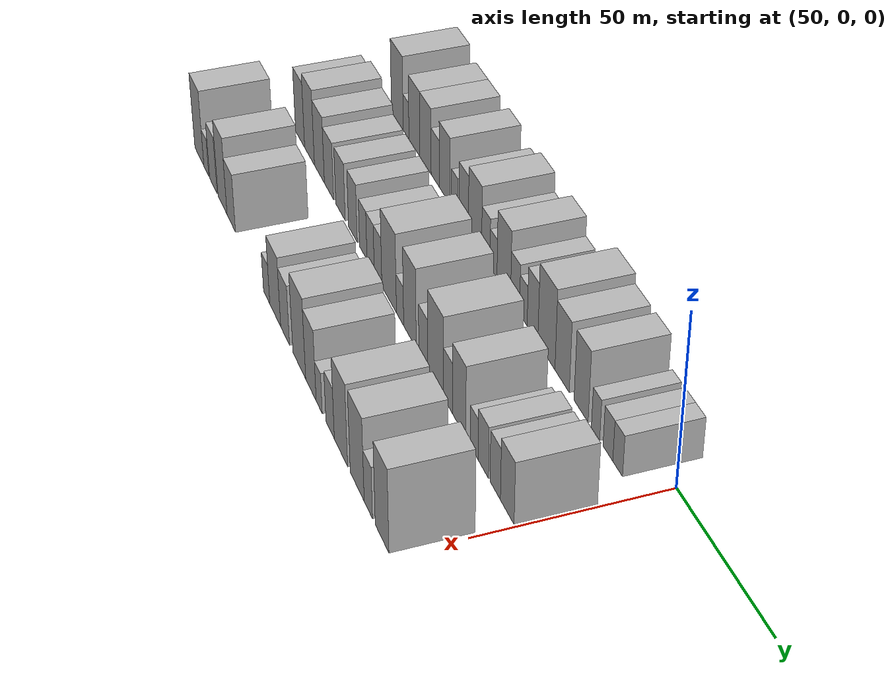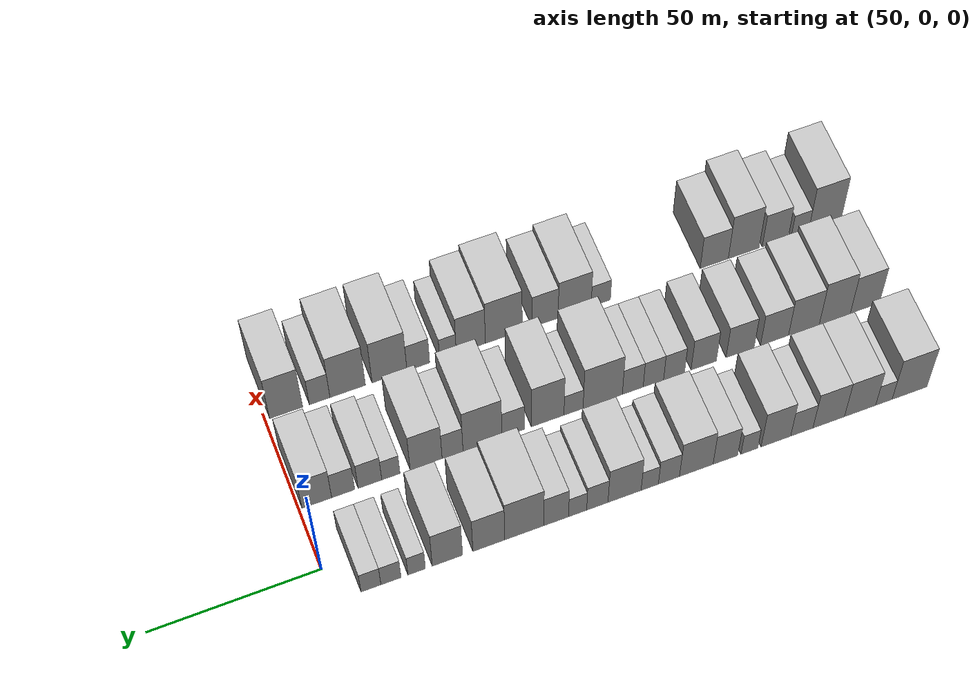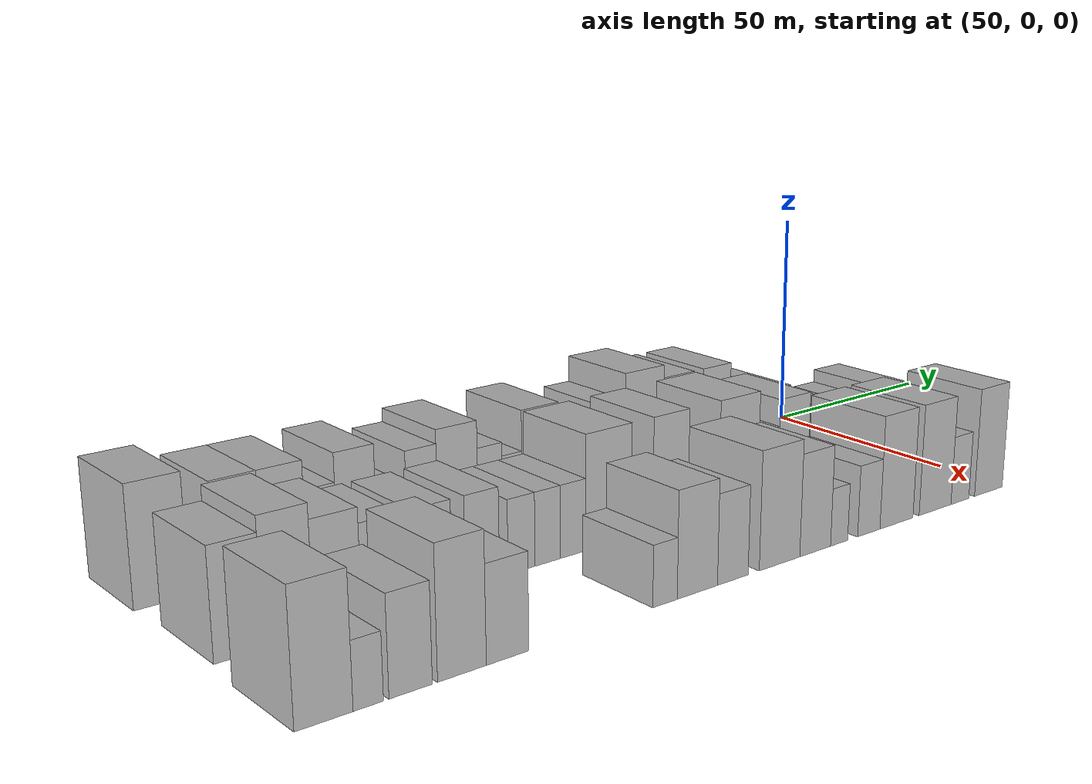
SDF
<sdf version="1.6">
 <world name="default">
  <model name="building_21">
   <static>1</static>
   <pose>50.0000 -171.3831 0 0.000000 0.000000 0.000000</pose>
   <link name="link">
    <pose>0 0 12.00 0 0 0</pose>
    <collision name="collision"><geometry><box><size>20.0000 10.7487 24.0000</size></box></geometry></collision>
    <visual name="visual">
     <cast_shadows>0</cast_shadows>
     <geometry><box><size>20.0000 10.7487 24.0000</size></box></geometry>
     <material>
      <script>
       <uri>model://HANNAS_wall/materials/scripts</uri>
       <uri>model://HANNAS_wall/materials/textures</uri>
       <name>vrc/HANNAS_wall</name>
      </script>
     </material>
    </visual>
   </link>
  </model>
  <model name="building_22">
   <static>1</static>
   <pose>50.0000 -163.4600 0 0.000000 0.000000 0.000000</pose>
   <link name="link">
    <pose>0 0 6.00 0 0 0</pose>
    <collision name="collision"><geometry><box><size>20.0000 5.0975 12.0000</size></box></geometry></collision>
    <visual name="visual">
     <cast_shadows>0</cast_shadows>
     <geometry><box><size>20.0000 5.0975 12.0000</size></box></geometry>
     <material>
      <script>
       <uri>model://HANNAS_wall/materials/scripts</uri>
       <uri>model://HANNAS_wall/materials/textures</uri>
       <name>vrc/HANNAS_wall</name>
      </script>
     </material>
    </visual>
   </link>
  </model>
  <model name="building_23">
   <static>1</static>
   <pose>50.0000 -156.1194 0 0.000000 0.000000 0.000000</pose>
   <link name="link">
    <pose>0 0 10.50 0 0 0</pose>
    <collision name="collision"><geometry><box><size>20.0000 9.5837 21.0000</size></box></geometry></collision>
    <visual name="visual">
     <cast_shadows>0</cast_shadows>
     <geometry><box><size>20.0000 9.5837 21.0000</size></box></geometry>
     <material>
      <script>
       <uri>model://HANNAS_wall/materials/scripts</uri>
       <uri>model://HANNAS_wall/materials/textures</uri>
       <name>vrc/HANNAS_wall</name>
      </script>
     </material>
    </visual>
   </link>
  </model>
  <model name="building_24">
   <static>1</static>
   <pose>50.0000 -146.5039 0 0.000000 0.000000 0.000000</pose>
   <link name="link">
    <pose>0 0 10.50 0 0 0</pose>
    <collision name="collision"><geometry><box><size>20.0000 9.6473 21.0000</size></box></geometry></collision>
    <visual name="visual">
     <cast_shadows>0</cast_shadows>
     <geometry><box><size>20.0000 9.6473 21.0000</size></box></geometry>
     <material>
      <script>
       <uri>model://HANNAS_wall/materials/scripts</uri>
       <uri>model://HANNAS_wall/materials/textures</uri>
       <name>vrc/HANNAS_wall</name>
      </script>
     </material>
    </visual>
   </link>
  </model>
  <model name="building_25">
   <static>1</static>
   <pose>50.0000 -138.2730 0 0.000000 0.000000 0.000000</pose>
   <link name="link">
    <pose>0 0 7.50 0 0 0</pose>
    <collision name="collision"><geometry><box><size>20.0000 6.8145 15.0000</size></box></geometry></collision>
    <visual name="visual">
     <cast_shadows>0</cast_shadows>
     <geometry><box><size>20.0000 6.8145 15.0000</size></box></geometry>
     <material>
      <script>
       <uri>model://HANNAS_wall/materials/scripts</uri>
       <uri>model://HANNAS_wall/materials/textures</uri>
       <name>vrc/HANNAS_wall</name>
      </script>
     </material>
    </visual>
   </link>
  </model>
  <model name="building_26">
   <static>1</static>
   <pose>50.0000 -130.3590 0 0.000000 0.000000 0.000000</pose>
   <link name="link">
    <pose>0 0 10.50 0 0 0</pose>
    <collision name="collision"><geometry><box><size>20.0000 9.0134 21.0000</size></box></geometry></collision>
    <visual name="visual">
     <cast_shadows>0</cast_shadows>
     <geometry><box><size>20.0000 9.0134 21.0000</size></box></geometry>
     <material>
      <script>
       <uri>model://HANNAS_wall/materials/scripts</uri>
       <uri>model://HANNAS_wall/materials/textures</uri>
       <name>vrc/HANNAS_wall</name>
      </script>
     </material>
    </visual>
   </link>
  </model>
  <model name="building_27">
   <static>1</static>
   <pose>50.0000 -122.3094 0 0.000000 0.000000 0.000000</pose>
   <link name="link">
    <pose>0 0 6.00 0 0 0</pose>
    <collision name="collision"><geometry><box><size>20.0000 5.0859 12.0000</size></box></geometry></collision>
    <visual name="visual">
     <cast_shadows>0</cast_shadows>
     <geometry><box><size>20.0000 5.0859 12.0000</size></box></geometry>
     <material>
      <script>
       <uri>model://HANNAS_wall/materials/scripts</uri>
       <uri>model://HANNAS_wall/materials/textures</uri>
       <name>vrc/HANNAS_wall</name>
      </script>
     </material>
    </visual>
   </link>
  </model>
  <model name="building_28">
   <static>1</static>
   <pose>50.0000 -115.0501 0 0.000000 0.000000 0.000000</pose>
   <link name="link">
    <pose>0 0 9.00 0 0 0</pose>
    <collision name="collision"><geometry><box><size>20.0000 7.4328 18.0000</size></box></geometry></collision>
    <visual name="visual">
     <cast_shadows>0</cast_shadows>
     <geometry><box><size>20.0000 7.4328 18.0000</size></box></geometry>
     <material>
      <script>
       <uri>model://HANNAS_wall/materials/scripts</uri>
       <uri>model://HANNAS_wall/materials/textures</uri>
       <name>vrc/HANNAS_wall</name>
      </script>
     </material>
    </visual>
   </link>
  </model>
  <model name="building_29">
   <static>1</static>
   <pose>50.0000 -106.2806 0 0.000000 0.000000 0.000000</pose>
   <link name="link">
    <pose>0 0 10.50 0 0 0</pose>
    <collision name="collision"><geometry><box><size>20.0000 10.1062 21.0000</size></box></geometry></collision>
    <visual name="visual">
     <cast_shadows>0</cast_shadows>
     <geometry><box><size>20.0000 10.1062 21.0000</size></box></geometry>
     <material>
      <script>
       <uri>model://HANNAS_wall/materials/scripts</uri>
       <uri>model://HANNAS_wall/materials/textures</uri>
       <name>vrc/HANNAS_wall</name>
      </script>
     </material>
    </visual>
   </link>
  </model>
  <model name="building_30">
   <static>1</static>
   <pose>50.0000 -98.0717 0 0.000000 0.000000 0.000000</pose>
   <link name="link">
    <pose>0 0 7.50 0 0 0</pose>
    <collision name="collision"><geometry><box><size>20.0000 6.3116 15.0000</size></box></geometry></collision>
    <visual name="visual">
     <cast_shadows>0</cast_shadows>
     <geometry><box><size>20.0000 6.3116 15.0000</size></box></geometry>
     <material>
      <script>
       <uri>model://HANNAS_wall/materials/scripts</uri>
       <uri>model://HANNAS_wall/materials/textures</uri>
       <name>vrc/HANNAS_wall</name>
      </script>
     </material>
    </visual>
   </link>
  </model>
  <model name="building_31">
   <static>1</static>
   <pose>50.0000 -92.3373 0 0.000000 0.000000 0.000000</pose>
   <link name="link">
    <pose>0 0 6.00 0 0 0</pose>
    <collision name="collision"><geometry><box><size>20.0000 5.1571 12.0000</size></box></geometry></collision>
    <visual name="visual">
     <cast_shadows>0</cast_shadows>
     <geometry><box><size>20.0000 5.1571 12.0000</size></box></geometry>
     <material>
      <script>
       <uri>model://HANNAS_wall/materials/scripts</uri>
       <uri>model://HANNAS_wall/materials/textures</uri>
       <name>vrc/HANNAS_wall</name>
      </script>
     </material>
    </visual>
   </link>
  </model>
  <model name="building_32">
   <static>1</static>
   <pose>50.0000 -84.8233 0 0.000000 0.000000 0.000000</pose>
   <link name="link">
    <pose>0 0 10.50 0 0 0</pose>
    <collision name="collision"><geometry><box><size>20.0000 9.8708 21.0000</size></box></geometry></collision>
    <visual name="visual">
     <cast_shadows>0</cast_shadows>
     <geometry><box><size>20.0000 9.8708 21.0000</size></box></geometry>
     <material>
      <script>
       <uri>model://HANNAS_wall/materials/scripts</uri>
       <uri>model://HANNAS_wall/materials/textures</uri>
       <name>vrc/HANNAS_wall</name>
      </script>
     </material>
    </visual>
   </link>
  </model>
  <model name="building_33">
   <static>1</static>
   <pose>50.0000 -76.7291 0 0.000000 0.000000 0.000000</pose>
   <link name="link">
    <pose>0 0 7.50 0 0 0</pose>
    <collision name="collision"><geometry><box><size>20.0000 6.3176 15.0000</size></box></geometry></collision>
    <visual name="visual">
     <cast_shadows>0</cast_shadows>
     <geometry><box><size>20.0000 6.3176 15.0000</size></box></geometry>
     <material>
      <script>
       <uri>model://HANNAS_wall/materials/scripts</uri>
       <uri>model://HANNAS_wall/materials/textures</uri>
       <name>vrc/HANNAS_wall</name>
      </script>
     </material>
    </visual>
   </link>
  </model>
  <model name="building_34">
   <static>1</static>
   <pose>50.0000 -70.8833 0 0.000000 0.000000 0.000000</pose>
   <link name="link">
    <pose>0 0 6.00 0 0 0</pose>
    <collision name="collision"><geometry><box><size>20.0000 5.3740 12.0000</size></box></geometry></collision>
    <visual name="visual">
     <cast_shadows>0</cast_shadows>
     <geometry><box><size>20.0000 5.3740 12.0000</size></box></geometry>
     <material>
      <script>
       <uri>model://HANNAS_wall/materials/scripts</uri>
       <uri>model://HANNAS_wall/materials/textures</uri>
       <name>vrc/HANNAS_wall</name>
      </script>
     </material>
    </visual>
   </link>
  </model>
  <model name="building_35">
   <static>1</static>
   <pose>50.0000 -64.5480 0 0.000000 0.000000 0.000000</pose>
   <link name="link">
    <pose>0 0 9.00 0 0 0</pose>
    <collision name="collision"><geometry><box><size>20.0000 7.2966 18.0000</size></box></geometry></collision>
    <visual name="visual">
     <cast_shadows>0</cast_shadows>
     <geometry><box><size>20.0000 7.2966 18.0000</size></box></geometry>
     <material>
      <script>
       <uri>model://HANNAS_wall/materials/scripts</uri>
       <uri>model://HANNAS_wall/materials/textures</uri>
       <name>vrc/HANNAS_wall</name>
      </script>
     </material>
    </visual>
   </link>
  </model>
  <model name="building_36">
   <static>1</static>
   <pose>50.0000 -55.1775 0 0.000000 0.000000 0.000000</pose>
   <link name="link">
    <pose>0 0 12.00 0 0 0</pose>
    <collision name="collision"><geometry><box><size>20.0000 11.4444 24.0000</size></box></geometry></collision>
    <visual name="visual">
     <cast_shadows>0</cast_shadows>
     <geometry><box><size>20.0000 11.4444 24.0000</size></box></geometry>
     <material>
      <script>
       <uri>model://HANNAS_wall/materials/scripts</uri>
       <uri>model://HANNAS_wall/materials/textures</uri>
       <name>vrc/HANNAS_wall</name>
      </script>
     </material>
    </visual>
   </link>
  </model>
  <model name="building_37">
   <static>1</static>
   <pose>50.0000 -44.7978 0 0.000000 0.000000 0.000000</pose>
   <link name="link">
    <pose>0 0 10.50 0 0 0</pose>
    <collision name="collision"><geometry><box><size>20.0000 9.3149 21.0000</size></box></geometry></collision>
    <visual name="visual">
     <cast_shadows>0</cast_shadows>
     <geometry><box><size>20.0000 9.3149 21.0000</size></box></geometry>
     <material>
      <script>
       <uri>model://HANNAS_wall/materials/scripts</uri>
       <uri>model://HANNAS_wall/materials/textures</uri>
       <name>vrc/HANNAS_wall</name>
      </script>
     </material>
    </visual>
   </link>
  </model>
  <model name="building_38">
   <static>1</static>
   <pose>50.0000 -32.7465 0 0.000000 0.000000 0.000000</pose>
   <link name="link">
    <pose>0 0 10.50 0 0 0</pose>
    <collision name="collision"><geometry><box><size>20.0000 8.7877 21.0000</size></box></geometry></collision>
    <visual name="visual">
     <cast_shadows>0</cast_shadows>
     <geometry><box><size>20.0000 8.7877 21.0000</size></box></geometry>
     <material>
      <script>
       <uri>model://HANNAS_wall/materials/scripts</uri>
       <uri>model://HANNAS_wall/materials/textures</uri>
       <name>vrc/HANNAS_wall</name>
      </script>
     </material>
    </visual>
   </link>
  </model>
  <model name="building_39">
   <static>1</static>
   <pose>50.0000 -23.8263 0 0.000000 0.000000 0.000000</pose>
   <link name="link">
    <pose>0 0 6.00 0 0 0</pose>
    <collision name="collision"><geometry><box><size>20.0000 5.0527 12.0000</size></box></geometry></collision>
    <visual name="visual">
     <cast_shadows>0</cast_shadows>
     <geometry><box><size>20.0000 5.0527 12.0000</size></box></geometry>
     <material>
      <script>
       <uri>model://HANNAS_wall/materials/scripts</uri>
       <uri>model://HANNAS_wall/materials/textures</uri>
       <name>vrc/HANNAS_wall</name>
      </script>
     </material>
    </visual>
   </link>
  </model>
  <model name="building_40">
   <static>1</static>
   <pose>50.0000 -16.4047 0 0.000000 0.000000 0.000000</pose>
   <link name="link">
    <pose>0 0 6.00 0 0 0</pose>
    <collision name="collision"><geometry><box><size>20.0000 5.7906 12.0000</size></box></geometry></collision>
    <visual name="visual">
     <cast_shadows>0</cast_shadows>
     <geometry><box><size>20.0000 5.7906 12.0000</size></box></geometry>
     <material>
      <script>
       <uri>model://HANNAS_wall/materials/scripts</uri>
       <uri>model://HANNAS_wall/materials/textures</uri>
       <name>vrc/HANNAS_wall</name>
      </script>
     </material>
    </visual>
   </link>
  </model>
  <model name="building_41">
   <static>1</static>
   <pose>50.0000 -10.6505 0 0.000000 0.000000 0.000000</pose>
   <link name="link">
    <pose>0 0 6.00 0 0 0</pose>
    <collision name="collision"><geometry><box><size>20.0000 5.7179 12.0000</size></box></geometry></collision>
    <visual name="visual">
     <cast_shadows>0</cast_shadows>
     <geometry><box><size>20.0000 5.7179 12.0000</size></box></geometry>
     <material>
      <script>
       <uri>model://HANNAS_wall/materials/scripts</uri>
       <uri>model://HANNAS_wall/materials/textures</uri>
       <name>vrc/HANNAS_wall</name>
      </script>
     </material>
    </visual>
   </link>
  </model>
  <model name="building_99">
   <static>1</static>
   <pose>79.0000 -170.9945 0 0.000000 0.000000 0.000000</pose>
   <link name="link">
    <pose>0 0 10.50 0 0 0</pose>
    <collision name="collision"><geometry><box><size>20.0000 9.1376 21.0000</size></box></geometry></collision>
    <visual name="visual">
     <cast_shadows>0</cast_shadows>
     <geometry><box><size>20.0000 9.1376 21.0000</size></box></geometry>
     <material>
      <script>
       <uri>model://HANNAS_wall/materials/scripts</uri>
       <uri>model://HANNAS_wall/materials/textures</uri>
       <name>vrc/HANNAS_wall</name>
      </script>
     </material>
    </visual>
   </link>
  </model>
  <model name="building_100">
   <static>1</static>
   <pose>79.0000 -161.5759 0 0.000000 0.000000 0.000000</pose>
   <link name="link">
    <pose>0 0 12.00 0 0 0</pose>
    <collision name="collision"><geometry><box><size>20.0000 9.6996 24.0000</size></box></geometry></collision>
    <visual name="visual">
     <cast_shadows>0</cast_shadows>
     <geometry><box><size>20.0000 9.6996 24.0000</size></box></geometry>
     <material>
      <script>
       <uri>model://HANNAS_wall/materials/scripts</uri>
       <uri>model://HANNAS_wall/materials/textures</uri>
       <name>vrc/HANNAS_wall</name>
      </script>
     </material>
    </visual>
   </link>
  </model>
  <model name="building_101">
   <static>1</static>
   <pose>79.0000 -151.9213 0 0.000000 0.000000 0.000000</pose>
   <link name="link">
    <pose>0 0 10.50 0 0 0</pose>
    <collision name="collision"><geometry><box><size>20.0000 9.6097 21.0000</size></box></geometry></collision>
    <visual name="visual">
     <cast_shadows>0</cast_shadows>
     <geometry><box><size>20.0000 9.6097 21.0000</size></box></geometry>
     <material>
      <script>
       <uri>model://HANNAS_wall/materials/scripts</uri>
       <uri>model://HANNAS_wall/materials/textures</uri>
       <name>vrc/HANNAS_wall</name>
      </script>
     </material>
    </visual>
   </link>
  </model>
  <model name="building_102">
   <static>1</static>
   <pose>79.0000 -142.7765 0 0.000000 0.000000 0.000000</pose>
   <link name="link">
    <pose>0 0 9.00 0 0 0</pose>
    <collision name="collision"><geometry><box><size>20.0000 8.6799 18.0000</size></box></geometry></collision>
    <visual name="visual">
     <cast_shadows>0</cast_shadows>
     <geometry><box><size>20.0000 8.6799 18.0000</size></box></geometry>
     <material>
      <script>
       <uri>model://HANNAS_wall/materials/scripts</uri>
       <uri>model://HANNAS_wall/materials/textures</uri>
       <name>vrc/HANNAS_wall</name>
      </script>
     </material>
    </visual>
   </link>
  </model>
  <model name="building_103">
   <static>1</static>
   <pose>79.0000 -132.1159 0 0.000000 0.000000 0.000000</pose>
   <link name="link">
    <pose>0 0 9.00 0 0 0</pose>
    <collision name="collision"><geometry><box><size>20.0000 8.6413 18.0000</size></box></geometry></collision>
    <visual name="visual">
     <cast_shadows>0</cast_shadows>
     <geometry><box><size>20.0000 8.6413 18.0000</size></box></geometry>
     <material>
      <script>
       <uri>model://HANNAS_wall/materials/scripts</uri>
       <uri>model://HANNAS_wall/materials/textures</uri>
       <name>vrc/HANNAS_wall</name>
      </script>
     </material>
    </visual>
   </link>
  </model>
  <model name="building_104">
   <static>1</static>
   <pose>79.0000 -120.9142 0 0.000000 0.000000 0.000000</pose>
   <link name="link">
    <pose>0 0 9.00 0 0 0</pose>
    <collision name="collision"><geometry><box><size>20.0000 7.7621 18.0000</size></box></geometry></collision>
    <visual name="visual">
     <cast_shadows>0</cast_shadows>
     <geometry><box><size>20.0000 7.7621 18.0000</size></box></geometry>
     <material>
      <script>
       <uri>model://HANNAS_wall/materials/scripts</uri>
       <uri>model://HANNAS_wall/materials/textures</uri>
       <name>vrc/HANNAS_wall</name>
      </script>
     </material>
    </visual>
   </link>
  </model>
  <model name="building_105">
   <static>1</static>
   <pose>79.0000 -111.8273 0 0.000000 0.000000 0.000000</pose>
   <link name="link">
    <pose>0 0 7.50 0 0 0</pose>
    <collision name="collision"><geometry><box><size>20.0000 6.4116 15.0000</size></box></geometry></collision>
    <visual name="visual">
     <cast_shadows>0</cast_shadows>
     <geometry><box><size>20.0000 6.4116 15.0000</size></box></geometry>
     <material>
      <script>
       <uri>model://HANNAS_wall/materials/scripts</uri>
       <uri>model://HANNAS_wall/materials/textures</uri>
       <name>vrc/HANNAS_wall</name>
      </script>
     </material>
    </visual>
   </link>
  </model>
  <model name="building_106">
   <static>1</static>
   <pose>79.0000 -105.5062 0 0.000000 0.000000 0.000000</pose>
   <link name="link">
    <pose>0 0 7.50 0 0 0</pose>
    <collision name="collision"><geometry><box><size>20.0000 6.2306 15.0000</size></box></geometry></collision>
    <visual name="visual">
     <cast_shadows>0</cast_shadows>
     <geometry><box><size>20.0000 6.2306 15.0000</size></box></geometry>
     <material>
      <script>
       <uri>model://HANNAS_wall/materials/scripts</uri>
       <uri>model://HANNAS_wall/materials/textures</uri>
       <name>vrc/HANNAS_wall</name>
      </script>
     </material>
    </visual>
   </link>
  </model>
  <model name="building_107">
   <static>1</static>
   <pose>79.0000 -99.2215 0 0.000000 0.000000 0.000000</pose>
   <link name="link">
    <pose>0 0 7.50 0 0 0</pose>
    <collision name="collision"><geometry><box><size>20.0000 6.3388 15.0000</size></box></geometry></collision>
    <visual name="visual">
     <cast_shadows>0</cast_shadows>
     <geometry><box><size>20.0000 6.3388 15.0000</size></box></geometry>
     <material>
      <script>
       <uri>model://HANNAS_wall/materials/scripts</uri>
       <uri>model://HANNAS_wall/materials/textures</uri>
       <name>vrc/HANNAS_wall</name>
      </script>
     </material>
    </visual>
   </link>
  </model>
  <model name="building_108">
   <static>1</static>
   <pose>79.0000 -90.1090 0 0.000000 0.000000 0.000000</pose>
   <link name="link">
    <pose>0 0 12.00 0 0 0</pose>
    <collision name="collision"><geometry><box><size>20.0000 11.8864 24.0000</size></box></geometry></collision>
    <visual name="visual">
     <cast_shadows>0</cast_shadows>
     <geometry><box><size>20.0000 11.8864 24.0000</size></box></geometry>
     <material>
      <script>
       <uri>model://HANNAS_wall/materials/scripts</uri>
       <uri>model://HANNAS_wall/materials/textures</uri>
       <name>vrc/HANNAS_wall</name>
      </script>
     </material>
    </visual>
   </link>
  </model>
  <model name="building_109">
   <static>1</static>
   <pose>79.0000 -81.2857 0 0.000000 0.000000 0.000000</pose>
   <link name="link">
    <pose>0 0 6.00 0 0 0</pose>
    <collision name="collision"><geometry><box><size>20.0000 5.7601 12.0000</size></box></geometry></collision>
    <visual name="visual">
     <cast_shadows>0</cast_shadows>
     <geometry><box><size>20.0000 5.7601 12.0000</size></box></geometry>
     <material>
      <script>
       <uri>model://HANNAS_wall/materials/scripts</uri>
       <uri>model://HANNAS_wall/materials/textures</uri>
       <name>vrc/HANNAS_wall</name>
      </script>
     </material>
    </visual>
   </link>
  </model>
  <model name="building_110">
   <static>1</static>
   <pose>79.0000 -73.5068 0 0.000000 0.000000 0.000000</pose>
   <link name="link">
    <pose>0 0 12.00 0 0 0</pose>
    <collision name="collision"><geometry><box><size>20.0000 9.7977 24.0000</size></box></geometry></collision>
    <visual name="visual">
     <cast_shadows>0</cast_shadows>
     <geometry><box><size>20.0000 9.7977 24.0000</size></box></geometry>
     <material>
      <script>
       <uri>model://HANNAS_wall/materials/scripts</uri>
       <uri>model://HANNAS_wall/materials/textures</uri>
       <name>vrc/HANNAS_wall</name>
      </script>
     </material>
    </visual>
   </link>
  </model>
  <model name="building_111">
   <static>1</static>
   <pose>79.0000 -63.2096 0 0.000000 0.000000 0.000000</pose>
   <link name="link">
    <pose>0 0 7.50 0 0 0</pose>
    <collision name="collision"><geometry><box><size>20.0000 6.7968 15.0000</size></box></geometry></collision>
    <visual name="visual">
     <cast_shadows>0</cast_shadows>
     <geometry><box><size>20.0000 6.7968 15.0000</size></box></geometry>
     <material>
      <script>
       <uri>model://HANNAS_wall/materials/scripts</uri>
       <uri>model://HANNAS_wall/materials/textures</uri>
       <name>vrc/HANNAS_wall</name>
      </script>
     </material>
    </visual>
   </link>
  </model>
  <model name="building_112">
   <static>1</static>
   <pose>79.0000 -54.0190 0 0.000000 0.000000 0.000000</pose>
   <link name="link">
    <pose>0 0 12.00 0 0 0</pose>
    <collision name="collision"><geometry><box><size>20.0000 11.5843 24.0000</size></box></geometry></collision>
    <visual name="visual">
     <cast_shadows>0</cast_shadows>
     <geometry><box><size>20.0000 11.5843 24.0000</size></box></geometry>
     <material>
      <script>
       <uri>model://HANNAS_wall/materials/scripts</uri>
       <uri>model://HANNAS_wall/materials/textures</uri>
       <name>vrc/HANNAS_wall</name>
      </script>
     </material>
    </visual>
   </link>
  </model>
  <model name="building_113">
   <static>1</static>
   <pose>79.0000 -45.1271 0 0.000000 0.000000 0.000000</pose>
   <link name="link">
    <pose>0 0 7.50 0 0 0</pose>
    <collision name="collision"><geometry><box><size>20.0000 6.1996 15.0000</size></box></geometry></collision>
    <visual name="visual">
     <cast_shadows>0</cast_shadows>
     <geometry><box><size>20.0000 6.1996 15.0000</size></box></geometry>
     <material>
      <script>
       <uri>model://HANNAS_wall/materials/scripts</uri>
       <uri>model://HANNAS_wall/materials/textures</uri>
       <name>vrc/HANNAS_wall</name>
      </script>
     </material>
    </visual>
   </link>
  </model>
  <model name="building_114">
   <static>1</static>
   <pose>79.0000 -37.3034 0 0.000000 0.000000 0.000000</pose>
   <link name="link">
    <pose>0 0 10.50 0 0 0</pose>
    <collision name="collision"><geometry><box><size>20.0000 9.4477 21.0000</size></box></geometry></collision>
    <visual name="visual">
     <cast_shadows>0</cast_shadows>
     <geometry><box><size>20.0000 9.4477 21.0000</size></box></geometry>
     <material>
      <script>
       <uri>model://HANNAS_wall/materials/scripts</uri>
       <uri>model://HANNAS_wall/materials/textures</uri>
       <name>vrc/HANNAS_wall</name>
      </script>
     </material>
    </visual>
   </link>
  </model>
  <model name="building_115">
   <static>1</static>
   <pose>79.0000 -26.9018 0 0.000000 0.000000 0.000000</pose>
   <link name="link">
    <pose>0 0 6.00 0 0 0</pose>
    <collision name="collision"><geometry><box><size>20.0000 5.3554 12.0000</size></box></geometry></collision>
    <visual name="visual">
     <cast_shadows>0</cast_shadows>
     <geometry><box><size>20.0000 5.3554 12.0000</size></box></geometry>
     <material>
      <script>
       <uri>model://HANNAS_wall/materials/scripts</uri>
       <uri>model://HANNAS_wall/materials/textures</uri>
       <name>vrc/HANNAS_wall</name>
      </script>
     </material>
    </visual>
   </link>
  </model>
  <model name="building_116">
   <static>1</static>
   <pose>79.0000 -20.7632 0 0.000000 0.000000 0.000000</pose>
   <link name="link">
    <pose>0 0 7.50 0 0 0</pose>
    <collision name="collision"><geometry><box><size>20.0000 6.9219 15.0000</size></box></geometry></collision>
    <visual name="visual">
     <cast_shadows>0</cast_shadows>
     <geometry><box><size>20.0000 6.9219 15.0000</size></box></geometry>
     <material>
      <script>
       <uri>model://HANNAS_wall/materials/scripts</uri>
       <uri>model://HANNAS_wall/materials/textures</uri>
       <name>vrc/HANNAS_wall</name>
      </script>
     </material>
    </visual>
   </link>
  </model>
  <model name="building_117">
   <static>1</static>
   <pose>79.0000 -12.9393 0 0.000000 0.000000 0.000000</pose>
   <link name="link">
    <pose>0 0 7.50 0 0 0</pose>
    <collision name="collision"><geometry><box><size>20.0000 6.7259 15.0000</size></box></geometry></collision>
    <visual name="visual">
     <cast_shadows>0</cast_shadows>
     <geometry><box><size>20.0000 6.7259 15.0000</size></box></geometry>
     <material>
      <script>
       <uri>model://HANNAS_wall/materials/scripts</uri>
       <uri>model://HANNAS_wall/materials/textures</uri>
       <name>vrc/HANNAS_wall</name>
      </script>
     </material>
    </visual>
   </link>
  </model>
  <model name="building_118">
   <static>1</static>
   <pose>79.0000 -5.2491 0 0.000000 0.000000 0.000000</pose>
   <link name="link">
    <pose>0 0 9.00 0 0 0</pose>
    <collision name="collision"><geometry><box><size>20.0000 8.6545 18.0000</size></box></geometry></collision>
    <visual name="visual">
     <cast_shadows>0</cast_shadows>
     <geometry><box><size>20.0000 8.6545 18.0000</size></box></geometry>
     <material>
      <script>
       <uri>model://HANNAS_wall/materials/scripts</uri>
       <uri>model://HANNAS_wall/materials/textures</uri>
       <name>vrc/HANNAS_wall</name>
      </script>
     </material>
    </visual>
   </link>
  </model>
  <model name="building_177">
   <static>1</static>
   <pose>108.0000 -171.5975 0 0.000000 0.000000 0.000000</pose>
   <link name="link">
    <pose>0 0 12.00 0 0 0</pose>
    <collision name="collision"><geometry><box><size>20.0000 10.3398 24.0000</size></box></geometry></collision>
    <visual name="visual">
     <cast_shadows>0</cast_shadows>
     <geometry><box><size>20.0000 10.3398 24.0000</size></box></geometry>
     <material>
      <script>
       <uri>model://HANNAS_wall/materials/scripts</uri>
       <uri>model://HANNAS_wall/materials/textures</uri>
       <name>vrc/HANNAS_wall</name>
      </script>
     </material>
    </visual>
   </link>
  </model>
  <model name="building_178">
   <static>1</static>
   <pose>108.0000 -163.6715 0 0.000000 0.000000 0.000000</pose>
   <link name="link">
    <pose>0 0 6.00 0 0 0</pose>
    <collision name="collision"><geometry><box><size>20.0000 5.5123 12.0000</size></box></geometry></collision>
    <visual name="visual">
     <cast_shadows>0</cast_shadows>
     <geometry><box><size>20.0000 5.5123 12.0000</size></box></geometry>
     <material>
      <script>
       <uri>model://HANNAS_wall/materials/scripts</uri>
       <uri>model://HANNAS_wall/materials/textures</uri>
       <name>vrc/HANNAS_wall</name>
      </script>
     </material>
    </visual>
   </link>
  </model>
  <model name="building_179">
   <static>1</static>
   <pose>108.0000 -155.8140 0 0.000000 0.000000 0.000000</pose>
   <link name="link">
    <pose>0 0 9.00 0 0 0</pose>
    <collision name="collision"><geometry><box><size>20.0000 8.2027 18.0000</size></box></geometry></collision>
    <visual name="visual">
     <cast_shadows>0</cast_shadows>
     <geometry><box><size>20.0000 8.2027 18.0000</size></box></geometry>
     <material>
      <script>
       <uri>model://HANNAS_wall/materials/scripts</uri>
       <uri>model://HANNAS_wall/materials/textures</uri>
       <name>vrc/HANNAS_wall</name>
      </script>
     </material>
    </visual>
   </link>
  </model>
  <model name="building_180">
   <static>1</static>
   <pose>108.0000 -145.8662 0 0.000000 0.000000 0.000000</pose>
   <link name="link">
    <pose>0 0 12.00 0 0 0</pose>
    <collision name="collision"><geometry><box><size>20.0000 9.6929 24.0000</size></box></geometry></collision>
    <visual name="visual">
     <cast_shadows>0</cast_shadows>
     <geometry><box><size>20.0000 9.6929 24.0000</size></box></geometry>
     <material>
      <script>
       <uri>model://HANNAS_wall/materials/scripts</uri>
       <uri>model://HANNAS_wall/materials/textures</uri>
       <name>vrc/HANNAS_wall</name>
      </script>
     </material>
    </visual>
   </link>
  </model>
  <model name="building_181">
   <static>1</static>
   <pose>108.0000 -136.6162 0 0.000000 0.000000 0.000000</pose>
   <link name="link">
    <pose>0 0 9.00 0 0 0</pose>
    <collision name="collision"><geometry><box><size>20.0000 8.8072 18.0000</size></box></geometry></collision>
    <visual name="visual">
     <cast_shadows>0</cast_shadows>
     <geometry><box><size>20.0000 8.8072 18.0000</size></box></geometry>
     <material>
      <script>
       <uri>model://HANNAS_wall/materials/scripts</uri>
       <uri>model://HANNAS_wall/materials/textures</uri>
       <name>vrc/HANNAS_wall</name>
      </script>
     </material>
    </visual>
   </link>
  </model>
  <model name="building_182">
   <static>1</static>
   <pose>108.0000 -101.2859 0 0.000000 0.000000 0.000000</pose>
   <link name="link">
    <pose>0 0 6.00 0 0 0</pose>
    <collision name="collision"><geometry><box><size>20.0000 5.9511 12.0000</size></box></geometry></collision>
    <visual name="visual">
     <cast_shadows>0</cast_shadows>
     <geometry><box><size>20.0000 5.9511 12.0000</size></box></geometry>
     <material>
      <script>
       <uri>model://HANNAS_wall/materials/scripts</uri>
       <uri>model://HANNAS_wall/materials/textures</uri>
       <name>vrc/HANNAS_wall</name>
      </script>
     </material>
    </visual>
   </link>
  </model>
  <model name="building_183">
   <static>1</static>
   <pose>108.0000 -93.2460 0 0.000000 0.000000 0.000000</pose>
   <link name="link">
    <pose>0 0 10.50 0 0 0</pose>
    <collision name="collision"><geometry><box><size>20.0000 10.1287 21.0000</size></box></geometry></collision>
    <visual name="visual">
     <cast_shadows>0</cast_shadows>
     <geometry><box><size>20.0000 10.1287 21.0000</size></box></geometry>
     <material>
      <script>
       <uri>model://HANNAS_wall/materials/scripts</uri>
       <uri>model://HANNAS_wall/materials/textures</uri>
       <name>vrc/HANNAS_wall</name>
      </script>
     </material>
    </visual>
   </link>
  </model>
  <model name="building_184">
   <static>1</static>
   <pose>108.0000 -84.1729 0 0.000000 0.000000 0.000000</pose>
   <link name="link">
    <pose>0 0 9.00 0 0 0</pose>
    <collision name="collision"><geometry><box><size>20.0000 8.0174 18.0000</size></box></geometry></collision>
    <visual name="visual">
     <cast_shadows>0</cast_shadows>
     <geometry><box><size>20.0000 8.0174 18.0000</size></box></geometry>
     <material>
      <script>
       <uri>model://HANNAS_wall/materials/scripts</uri>
       <uri>model://HANNAS_wall/materials/textures</uri>
       <name>vrc/HANNAS_wall</name>
      </script>
     </material>
    </visual>
   </link>
  </model>
  <model name="building_185">
   <static>1</static>
   <pose>108.0000 -71.5759 0 0.000000 0.000000 0.000000</pose>
   <link name="link">
    <pose>0 0 12.00 0 0 0</pose>
    <collision name="collision"><geometry><box><size>20.0000 11.1765 24.0000</size></box></geometry></collision>
    <visual name="visual">
     <cast_shadows>0</cast_shadows>
     <geometry><box><size>20.0000 11.1765 24.0000</size></box></geometry>
     <material>
      <script>
       <uri>model://HANNAS_wall/materials/scripts</uri>
       <uri>model://HANNAS_wall/materials/textures</uri>
       <name>vrc/HANNAS_wall</name>
      </script>
     </material>
    </visual>
   </link>
  </model>
  <model name="building_186">
   <static>1</static>
   <pose>108.0000 -61.5686 0 0.000000 0.000000 0.000000</pose>
   <link name="link">
    <pose>0 0 10.50 0 0 0</pose>
    <collision name="collision"><geometry><box><size>20.0000 8.8380 21.0000</size></box></geometry></collision>
    <visual name="visual">
     <cast_shadows>0</cast_shadows>
     <geometry><box><size>20.0000 8.8380 21.0000</size></box></geometry>
     <material>
      <script>
       <uri>model://HANNAS_wall/materials/scripts</uri>
       <uri>model://HANNAS_wall/materials/textures</uri>
       <name>vrc/HANNAS_wall</name>
      </script>
     </material>
    </visual>
   </link>
  </model>
  <model name="building_187">
   <static>1</static>
   <pose>108.0000 -54.6203 0 0.000000 0.000000 0.000000</pose>
   <link name="link">
    <pose>0 0 6.00 0 0 0</pose>
    <collision name="collision"><geometry><box><size>20.0000 5.0586 12.0000</size></box></geometry></collision>
    <visual name="visual">
     <cast_shadows>0</cast_shadows>
     <geometry><box><size>20.0000 5.0586 12.0000</size></box></geometry>
     <material>
      <script>
       <uri>model://HANNAS_wall/materials/scripts</uri>
       <uri>model://HANNAS_wall/materials/textures</uri>
       <name>vrc/HANNAS_wall</name>
      </script>
     </material>
    </visual>
   </link>
  </model>
  <model name="building_188">
   <static>1</static>
   <pose>108.0000 -45.6764 0 0.000000 0.000000 0.000000</pose>
   <link name="link">
    <pose>0 0 7.50 0 0 0</pose>
    <collision name="collision"><geometry><box><size>20.0000 6.8292 15.0000</size></box></geometry></collision>
    <visual name="visual">
     <cast_shadows>0</cast_shadows>
     <geometry><box><size>20.0000 6.8292 15.0000</size></box></geometry>
     <material>
      <script>
       <uri>model://HANNAS_wall/materials/scripts</uri>
       <uri>model://HANNAS_wall/materials/textures</uri>
       <name>vrc/HANNAS_wall</name>
      </script>
     </material>
    </visual>
   </link>
  </model>
  <model name="building_189">
   <static>1</static>
   <pose>108.0000 -37.0350 0 0.000000 0.000000 0.000000</pose>
   <link name="link">
    <pose>0 0 12.00 0 0 0</pose>
    <collision name="collision"><geometry><box><size>20.0000 10.4537 24.0000</size></box></geometry></collision>
    <visual name="visual">
     <cast_shadows>0</cast_shadows>
     <geometry><box><size>20.0000 10.4537 24.0000</size></box></geometry>
     <material>
      <script>
       <uri>model://HANNAS_wall/materials/scripts</uri>
       <uri>model://HANNAS_wall/materials/textures</uri>
       <name>vrc/HANNAS_wall</name>
      </script>
     </material>
    </visual>
   </link>
  </model>
  <model name="building_190">
   <static>1</static>
   <pose>108.0000 -24.5302 0 0.000000 0.000000 0.000000</pose>
   <link name="link">
    <pose>0 0 12.00 0 0 0</pose>
    <collision name="collision"><geometry><box><size>20.0000 10.5557 24.0000</size></box></geometry></collision>
    <visual name="visual">
     <cast_shadows>0</cast_shadows>
     <geometry><box><size>20.0000 10.5557 24.0000</size></box></geometry>
     <material>
      <script>
       <uri>model://HANNAS_wall/materials/scripts</uri>
       <uri>model://HANNAS_wall/materials/textures</uri>
       <name>vrc/HANNAS_wall</name>
      </script>
     </material>
    </visual>
   </link>
  </model>
  <model name="building_191">
   <static>1</static>
   <pose>108.0000 -16.1950 0 0.000000 0.000000 0.000000</pose>
   <link name="link">
    <pose>0 0 7.50 0 0 0</pose>
    <collision name="collision"><geometry><box><size>20.0000 6.1146 15.0000</size></box></geometry></collision>
    <visual name="visual">
     <cast_shadows>0</cast_shadows>
     <geometry><box><size>20.0000 6.1146 15.0000</size></box></geometry>
     <material>
      <script>
       <uri>model://HANNAS_wall/materials/scripts</uri>
       <uri>model://HANNAS_wall/materials/textures</uri>
       <name>vrc/HANNAS_wall</name>
      </script>
     </material>
    </visual>
   </link>
  </model>
  <model name="building_192">
   <static>1</static>
   <pose>108.0000 -6.2478 0 0.000000 0.000000 0.000000</pose>
   <link name="link">
    <pose>0 0 12.00 0 0 0</pose>
    <collision name="collision"><geometry><box><size>20.0000 9.7799 24.0000</size></box></geometry></collision>
    <visual name="visual">
     <cast_shadows>0</cast_shadows>
     <geometry><box><size>20.0000 9.7799 24.0000</size></box></geometry>
     <material>
      <script>
       <uri>model://HANNAS_wall/materials/scripts</uri>
       <uri>model://HANNAS_wall/materials/textures</uri>
       <name>vrc/HANNAS_wall</name>
      </script>
     </material>
    </visual>
   </link>
  </model>
 </world>
</sdf>
